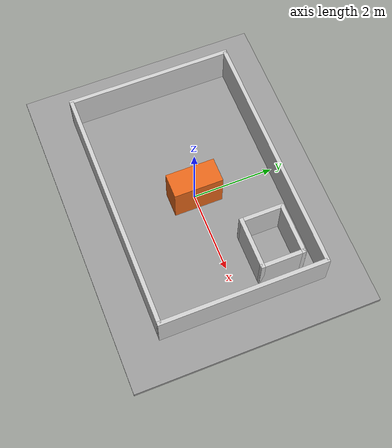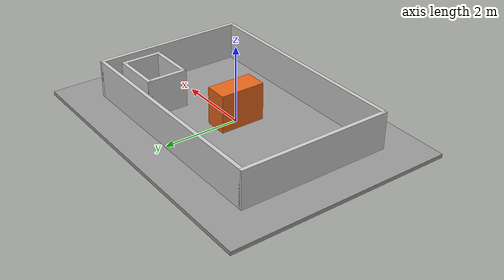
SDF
<?xml version="1.0"?>
<sdf version="1.9">
  <world name="evaluation">

    <gravity>0 0 -9.81</gravity>

    <physics name="default_physics" type="ignored">
      <max_step_size>0.001</max_step_size>
      <real_time_factor>1.0</real_time_factor>
    </physics>

    <plugin filename="gz-sim-physics-system"
            name="gz::sim::systems::Physics"/>

    <plugin filename="gz-sim-user-commands-system"
            name="gz::sim::systems::UserCommands"/>

    <plugin filename="gz-sim-scene-broadcaster-system"
            name="gz::sim::systems::SceneBroadcaster"/>

    <!-- GPU 라이다 등 렌더링 기반 센서를 실행 -->
    <plugin filename="gz-sim-sensors-system"
            name="gz::sim::systems::Sensors">
      <render_engine>ogre2</render_engine>
    </plugin>

    <light name="sun" type="directional">
      <pose>0 0 10 0 0 0</pose>
      <cast_shadows>true</cast_shadows>
      <diffuse>0.8 0.8 0.8 1</diffuse>
      <specular>0.2 0.2 0.2 1</specular>
      <direction>-0.5 0.1 -0.9</direction>
    </light>

    <!-- 윗면이 z=0인 바닥 -->
    <model name="ground">
      <static>true</static>
      <pose>0 0 -0.05 0 0 0</pose>

      <link name="ground_link">
        <collision name="ground_collision">
          <geometry>
            <box>
              <size>8 6 0.1</size>
            </box>
          </geometry>
        </collision>

        <visual name="ground_visual">
          <geometry>
            <box>
              <size>8 6 0.1</size>
            </box>
          </geometry>
          <material>
            <ambient>0.6 0.6 0.6 1</ambient>
            <diffuse>0.6 0.6 0.6 1</diffuse>
          </material>
        </visual>
      </link>
    </model>

    <!-- 평가 공간의 +y 방향 외벽 -->
    <model name="north_wall">
      <static>true</static>
      <pose>0 2 0.5 0 0 0</pose>

      <link name="wall_link">
        <collision name="wall_collision">
          <geometry>
            <box>
              <size>6 0.1 1</size>
            </box>
          </geometry>
        </collision>

        <visual name="wall_visual">
          <geometry>
            <box>
              <size>6 0.1 1</size>
            </box>
          </geometry>
          <material>
            <ambient>0.8 0.8 0.8 1</ambient>
            <diffuse>0.8 0.8 0.8 1</diffuse>
          </material>
        </visual>
      </link>
    </model>

    <!-- -y 방향 외벽 -->
    <model name="south_wall">
      <static>true</static>
      <pose>0 -2 0.5 0 0 0</pose>

      <link name="wall_link">
        <collision name="wall_collision">
          <geometry>
            <box>
              <size>6 0.1 1</size>
            </box>
          </geometry>
        </collision>

        <visual name="wall_visual">
          <geometry>
            <box>
              <size>6 0.1 1</size>
            </box>
          </geometry>
          <material>
            <ambient>0.8 0.8 0.8 1</ambient>
            <diffuse>0.8 0.8 0.8 1</diffuse>
          </material>
        </visual>
      </link>
    </model>

    <!-- -x 방향 외벽 -->
    <model name="west_all">
      <static>true</static>
      <pose>-3 0 0.5 0 0 0</pose>

      <link name="wall_link">
        <collision name="wall_collision">
          <geometry>
            <box>
              <size>0.1 4.1 1</size>
            </box>
          </geometry>
        </collision>

        <visual name="wall_visual">
          <geometry>
            <box>
              <size>0.1 4.1 1</size>
            </box>
          </geometry>
          <material>
            <ambient>0.8 0.8 0.8 1</ambient>
            <diffuse>0.8 0.8 0.8 1</diffuse>
          </material>
        </visual>
      </link>
    </model>

    <!-- x 방향 외벽 -->
    <model name="east_wall">
      <static>true</static>
      <pose>3 0 0.5 0 0 0</pose>

      <link name="wall_link">
        <collision name="wall_collision">
          <geometry>
            <box>
              <size>0.1 4.1 1</size>
            </box>
          </geometry>
        </collision>

        <visual name="wall_visual">
          <geometry>
            <box>
              <size>0.1 4.1 1</size>
            </box>
          </geometry>
          <material>
            <ambient>0.8 0.8 0.8 1</ambient>
            <diffuse>0.8 0.8 0.8 1</diffuse>
          </material>
        </visual>
      </link>
    </model>

    <model name="detour_obstacle">
      <static>true</static>
      <pose>0 0 0.5 0 0 0</pose>

      <link name="wall_link">
        <collision name="wall_collision">
          <geometry>
            <box>
              <size>0.6 1.2 1</size>
            </box>
          </geometry>
        </collision>

        <visual name="wall_visual">
          <geometry>
            <box>
              <size>0.6 1.2 1</size>
            </box>
          </geometry>
          <material>
            <ambient>0.9 0.4 0.1 1</ambient>
            <diffuse>0.9 0.4 0.1 1</diffuse>
          </material>
        </visual>
      </link>
    </model>

    <model name="closed_south_wall">
      <static>true</static>
      <pose>2 0.6 0.5 0 0 0</pose>

      <link name="wall_link">
        <collision name="wall_collision">
          <geometry>
            <box>
              <size>1.3 0.1 1</size>
            </box>
          </geometry>
        </collision>

        <visual name="wall_visual">
          <geometry>
            <box>
              <size>1.3 0.1 1</size>
            </box>
          </geometry>
          <material>
            <ambient>0.8 0.8 0.8 1</ambient>
            <diffuse>0.8 0.8 0.8 1</diffuse>
          </material>
        </visual>
      </link>
    </model>

    <model name="closed_north_wall">
      <static>true</static>
      <pose>2 1.6 0.5 0 0 0</pose>

      <link name="wall_link">
        <collision name="wall_collision">
          <geometry>
            <box>
              <size>1.3 0.1 1</size>
            </box>
          </geometry>
        </collision>

        <visual name="wall_visual">
          <geometry>
            <box>
              <size>1.3 0.1 1</size>
            </box>
          </geometry>
          <material>
            <ambient>0.8 0.8 0.8 1</ambient>
            <diffuse>0.8 0.8 0.8 1</diffuse>
          </material>
        </visual>
      </link>
    </model>

    <model name="closed_west_wall">
      <static>true</static>
      <pose>1.4 1.1 0.5 0 0 0</pose>

      <link name="wall_link">
        <collision name="wall_collision">
          <geometry>
            <box>
              <size>0.1 1.1 1</size>
            </box>
          </geometry>
        </collision>

        <visual name="wall_visual">
          <geometry>
            <box>
              <size>0.1 1.1 1</size>
            </box>
          </geometry>
          <material>
            <ambient>0.8 0.8 0.8 1</ambient>
            <diffuse>0.8 0.8 0.8 1</diffuse>
          </material>
        </visual>
      </link>
    </model>

    <model name="closed_east_wall">
      <static>true</static>
      <pose>2.6 1.1 0.5 0 0 0</pose>

      <link name="wall_link">
        <collision name="wall_collision">
          <geometry>
            <box>
              <size>0.1 1.1 1</size>
            </box>
          </geometry>
        </collision>

        <visual name="wall_visual">
          <geometry>
            <box>
              <size>0.1 1.1 1</size>
            </box>
          </geometry>
          <material>
            <ambient>0.8 0.8 0.8 1</ambient>
            <diffuse>0.8 0.8 0.8 1</diffuse>
          </material>
        </visual>
      </link>
    </model>

  </world>
</sdf>
